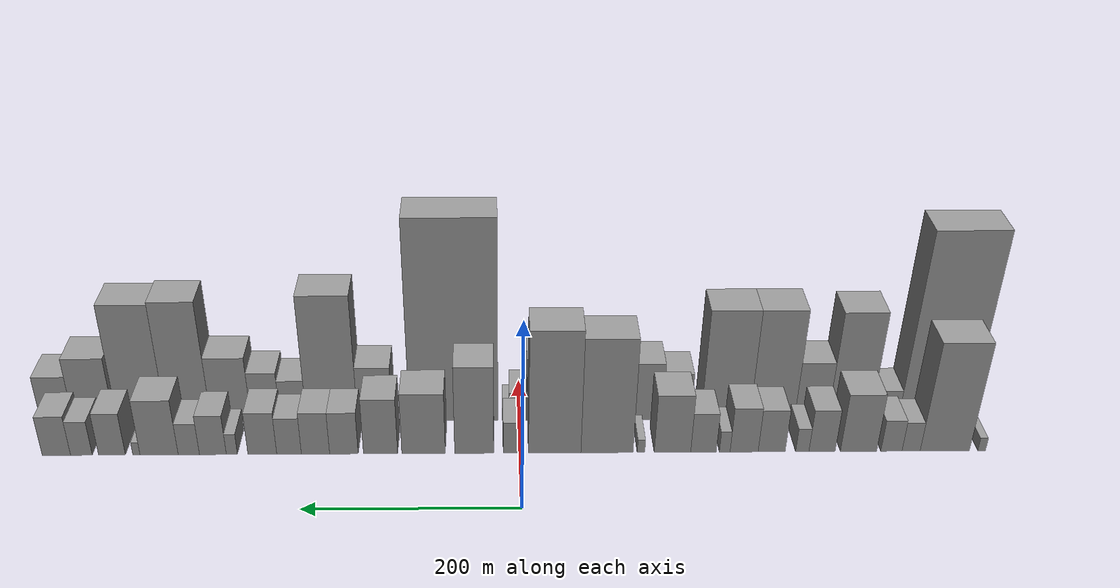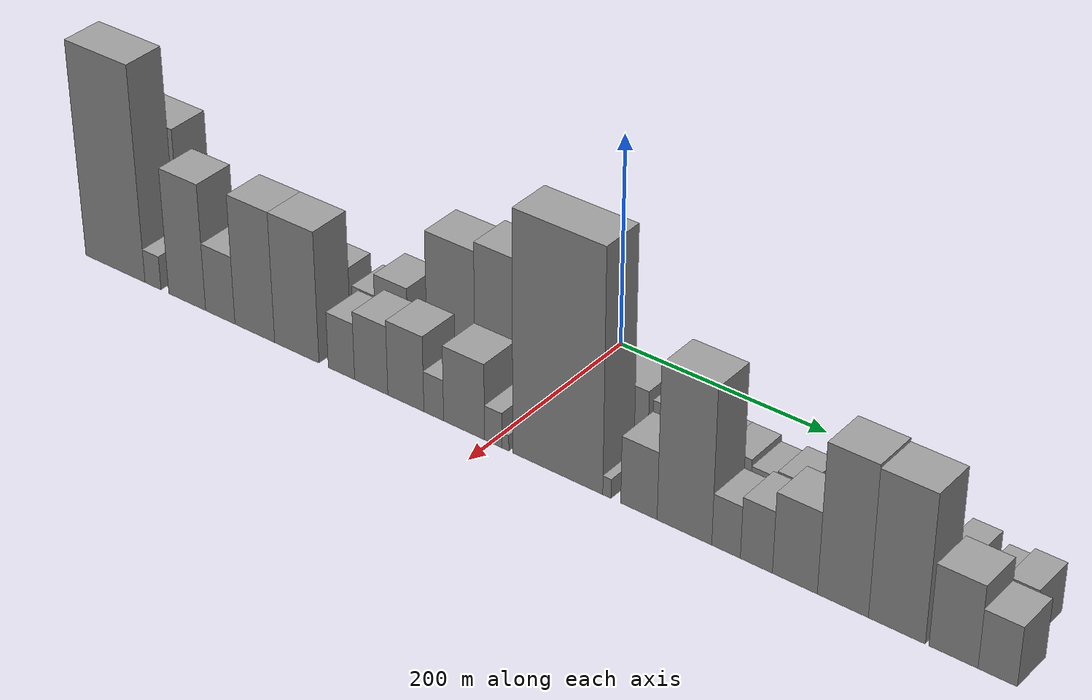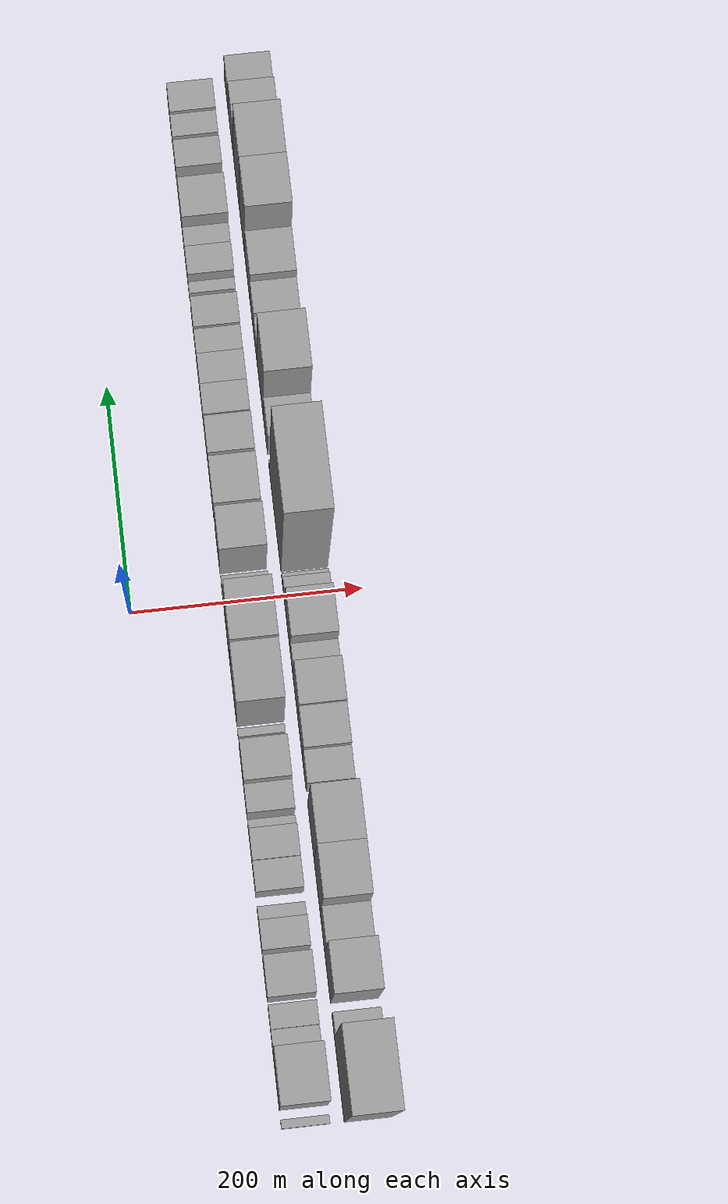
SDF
<sdf version="1.6">
 <world name="default">
  <scene>
   <sky><clouds><speed>12</speed></clouds></sky>
   <ambient>0.4 0.4 0.4 1</ambient>
   <background>0.7 0.7 0.7 1</background>
   <shadows>1</shadows>
  </scene>
  <gravity>0 0 -9.8066</gravity>
  <magnetic_field>6e-06 2.3e-05 -4.2e-05</magnetic_field>
  <physics default="0" name="default_physics" type="ode">
   <ode>
    <solver>
     <type>quick</type>
     <iters>10</iters>
     <sor>1.0</sor>
     <use_dynamic_moi_rescaling>0</use_dynamic_moi_rescaling>
    </solver>
    <constraints>
     <cfm>0</cfm>
     <erp>0.2</erp>
     <contact_max_correcting_vel>100</contact_max_correcting_vel>
     <contact_surface_layer>0.001</contact_surface_layer>
    </constraints>
   </ode>
   <max_step_size>0.004</max_step_size>
   <real_time_factor>1</real_time_factor>
   <real_time_update_rate>250</real_time_update_rate>
  </physics>
  <light name="sun" type="directional">
   <pose>0 0 10 0 0 0</pose>
   <diffuse>0.8 0.8 0.8 1</diffuse>
   <specular>0.2 0.2 0.2 1</specular>
   <attenuation>
    <range>1000</range>
    <constant>0.9</constant>
    <linear>0.01</linear>
    <quadratic>0.001</quadratic>
   </attenuation>
   <direction>-0.5 0.1 -0.9</direction>
  </light>
  <model name="building_1">
   <static>1</static>
   <pose>100.0000 -440.3002 0 0.000000 0.000000 0.000000</pose>
   <link name="link">
    <pose>0 0 7.50 0 0 0</pose>
    <collision name="collision"><geometry><box><size>40.0000 7.3996 15.0000</size></box></geometry></collision>
    <visual name="visual">
     <cast_shadows>0</cast_shadows>
     <geometry><box><size>40.0000 7.3996 15.0000</size></box></geometry>
     <material>
      <script>
       <uri>model://grey_wall/materials/scripts</uri>
       <uri>model://grey_wall/materials/textures</uri>
       <name>vrc/grey_wall</name>
      </script>
     </material>
    </visual>
   </link>
  </model>
  <model name="building_2">
   <static>1</static>
   <pose>100.0000 -404.9858 0 0.000000 0.000000 0.000000</pose>
   <link name="link">
    <pose>0 0 61.50 0 0 0</pose>
    <collision name="collision"><geometry><box><size>40.0000 47.2292 123.0000</size></box></geometry></collision>
    <visual name="visual">
     <cast_shadows>0</cast_shadows>
     <geometry><box><size>40.0000 47.2292 123.0000</size></box></geometry>
     <material>
      <script>
       <uri>model://grey_wall/materials/scripts</uri>
       <uri>model://grey_wall/materials/textures</uri>
       <name>vrc/grey_wall</name>
      </script>
     </material>
    </visual>
   </link>
  </model>
  <model name="building_3">
   <static>1</static>
   <pose>100.0000 -372.7177 0 0.000000 0.000000 0.000000</pose>
   <link name="link">
    <pose>0 0 16.50 0 0 0</pose>
    <collision name="collision"><geometry><box><size>40.0000 17.3070 33.0000</size></box></geometry></collision>
    <visual name="visual">
     <cast_shadows>0</cast_shadows>
     <geometry><box><size>40.0000 17.3070 33.0000</size></box></geometry>
     <material>
      <script>
       <uri>model://grey_wall/materials/scripts</uri>
       <uri>model://grey_wall/materials/textures</uri>
       <name>vrc/grey_wall</name>
      </script>
     </material>
    </visual>
   </link>
  </model>
  <model name="building_4">
   <static>1</static>
   <pose>100.0000 -353.9491 0 0.000000 0.000000 0.000000</pose>
   <link name="link">
    <pose>0 0 18.00 0 0 0</pose>
    <collision name="collision"><geometry><box><size>40.0000 20.2304 36.0000</size></box></geometry></collision>
    <visual name="visual">
     <cast_shadows>0</cast_shadows>
     <geometry><box><size>40.0000 20.2304 36.0000</size></box></geometry>
     <material>
      <script>
       <uri>model://grey_wall/materials/scripts</uri>
       <uri>model://grey_wall/materials/textures</uri>
       <name>vrc/grey_wall</name>
      </script>
     </material>
    </visual>
   </link>
  </model>
  <model name="building_5">
   <static>1</static>
   <pose>100.0000 -322.5061 0 0.000000 0.000000 0.000000</pose>
   <link name="link">
    <pose>0 0 33.00 0 0 0</pose>
    <collision name="collision"><geometry><box><size>40.0000 34.6555 66.0000</size></box></geometry></collision>
    <visual name="visual">
     <cast_shadows>0</cast_shadows>
     <geometry><box><size>40.0000 34.6555 66.0000</size></box></geometry>
     <material>
      <script>
       <uri>model://grey_wall/materials/scripts</uri>
       <uri>model://grey_wall/materials/textures</uri>
       <name>vrc/grey_wall</name>
      </script>
     </material>
    </visual>
   </link>
  </model>
  <model name="building_6">
   <static>1</static>
   <pose>100.0000 -287.6332 0 0.000000 0.000000 0.000000</pose>
   <link name="link">
    <pose>0 0 24.00 0 0 0</pose>
    <collision name="collision"><geometry><box><size>40.0000 25.0902 48.0000</size></box></geometry></collision>
    <visual name="visual">
     <cast_shadows>0</cast_shadows>
     <geometry><box><size>40.0000 25.0902 48.0000</size></box></geometry>
     <material>
      <script>
       <uri>model://grey_wall/materials/scripts</uri>
       <uri>model://grey_wall/materials/textures</uri>
       <name>vrc/grey_wall</name>
      </script>
     </material>
    </visual>
   </link>
  </model>
  <model name="building_7">
   <static>1</static>
   <pose>100.0000 -268.7482 0 0.000000 0.000000 0.000000</pose>
   <link name="link">
    <pose>0 0 13.50 0 0 0</pose>
    <collision name="collision"><geometry><box><size>40.0000 12.6799 27.0000</size></box></geometry></collision>
    <visual name="visual">
     <cast_shadows>0</cast_shadows>
     <geometry><box><size>40.0000 12.6799 27.0000</size></box></geometry>
     <material>
      <script>
       <uri>model://grey_wall/materials/scripts</uri>
       <uri>model://grey_wall/materials/textures</uri>
       <name>vrc/grey_wall</name>
      </script>
     </material>
    </visual>
   </link>
  </model>
  <model name="building_8">
   <static>1</static>
   <pose>100.0000 -239.4727 0 0.000000 0.000000 0.000000</pose>
   <link name="link">
    <pose>0 0 24.00 0 0 0</pose>
    <collision name="collision"><geometry><box><size>40.0000 25.8710 48.0000</size></box></geometry></collision>
    <visual name="visual">
     <cast_shadows>0</cast_shadows>
     <geometry><box><size>40.0000 25.8710 48.0000</size></box></geometry>
     <material>
      <script>
       <uri>model://grey_wall/materials/scripts</uri>
       <uri>model://grey_wall/materials/textures</uri>
       <name>vrc/grey_wall</name>
      </script>
     </material>
    </visual>
   </link>
  </model>
  <model name="building_9">
   <static>1</static>
   <pose>100.0000 -213.1364 0 0.000000 0.000000 0.000000</pose>
   <link name="link">
    <pose>0 0 25.50 0 0 0</pose>
    <collision name="collision"><geometry><box><size>40.0000 26.8017 51.0000</size></box></geometry></collision>
    <visual name="visual">
     <cast_shadows>0</cast_shadows>
     <geometry><box><size>40.0000 26.8017 51.0000</size></box></geometry>
     <material>
      <script>
       <uri>model://grey_wall/materials/scripts</uri>
       <uri>model://grey_wall/materials/textures</uri>
       <name>vrc/grey_wall</name>
      </script>
     </material>
    </visual>
   </link>
  </model>
  <model name="building_10">
   <static>1</static>
   <pose>100.0000 -194.6519 0 0.000000 0.000000 0.000000</pose>
   <link name="link">
    <pose>0 0 12.00 0 0 0</pose>
    <collision name="collision"><geometry><box><size>40.0000 10.1672 24.0000</size></box></geometry></collision>
    <visual name="visual">
     <cast_shadows>0</cast_shadows>
     <geometry><box><size>40.0000 10.1672 24.0000</size></box></geometry>
     <material>
      <script>
       <uri>model://grey_wall/materials/scripts</uri>
       <uri>model://grey_wall/materials/textures</uri>
       <name>vrc/grey_wall</name>
      </script>
     </material>
    </visual>
   </link>
  </model>
  <model name="building_11">
   <static>1</static>
   <pose>100.0000 -174.3743 0 0.000000 0.000000 0.000000</pose>
   <link name="link">
    <pose>0 0 22.50 0 0 0</pose>
    <collision name="collision"><geometry><box><size>40.0000 24.3881 45.0000</size></box></geometry></collision>
    <visual name="visual">
     <cast_shadows>0</cast_shadows>
     <geometry><box><size>40.0000 24.3881 45.0000</size></box></geometry>
     <material>
      <script>
       <uri>model://grey_wall/materials/scripts</uri>
       <uri>model://grey_wall/materials/textures</uri>
       <name>vrc/grey_wall</name>
      </script>
     </material>
    </visual>
   </link>
  </model>
  <model name="building_12">
   <static>1</static>
   <pose>100.0000 -144.7918 0 0.000000 0.000000 0.000000</pose>
   <link name="link">
    <pose>0 0 33.00 0 0 0</pose>
    <collision name="collision"><geometry><box><size>40.0000 34.7770 66.0000</size></box></geometry></collision>
    <visual name="visual">
     <cast_shadows>0</cast_shadows>
     <geometry><box><size>40.0000 34.7770 66.0000</size></box></geometry>
     <material>
      <script>
       <uri>model://grey_wall/materials/scripts</uri>
       <uri>model://grey_wall/materials/textures</uri>
       <name>vrc/grey_wall</name>
      </script>
     </material>
    </visual>
   </link>
  </model>
  <model name="building_13">
   <static>1</static>
   <pose>100.0000 -114.8015 0 0.000000 0.000000 0.000000</pose>
   <link name="link">
    <pose>0 0 7.50 0 0 0</pose>
    <collision name="collision"><geometry><box><size>40.0000 7.2035 15.0000</size></box></geometry></collision>
    <visual name="visual">
     <cast_shadows>0</cast_shadows>
     <geometry><box><size>40.0000 7.2035 15.0000</size></box></geometry>
     <material>
      <script>
       <uri>model://grey_wall/materials/scripts</uri>
       <uri>model://grey_wall/materials/textures</uri>
       <name>vrc/grey_wall</name>
      </script>
     </material>
    </visual>
   </link>
  </model>
  <model name="building_14">
   <static>1</static>
   <pose>100.0000 -82.3362 0 0.000000 0.000000 0.000000</pose>
   <link name="link">
    <pose>0 0 64.50 0 0 0</pose>
    <collision name="collision"><geometry><box><size>40.0000 49.7271 129.0000</size></box></geometry></collision>
    <visual name="visual">
     <cast_shadows>0</cast_shadows>
     <geometry><box><size>40.0000 49.7271 129.0000</size></box></geometry>
     <material>
      <script>
       <uri>model://grey_wall/materials/scripts</uri>
       <uri>model://grey_wall/materials/textures</uri>
       <name>vrc/grey_wall</name>
      </script>
     </material>
    </visual>
   </link>
  </model>
  <model name="building_15">
   <static>1</static>
   <pose>100.0000 -32.4984 0 0.000000 0.000000 0.000000</pose>
   <link name="link">
    <pose>0 0 69.00 0 0 0</pose>
    <collision name="collision"><geometry><box><size>40.0000 49.9486 138.0000</size></box></geometry></collision>
    <visual name="visual">
     <cast_shadows>0</cast_shadows>
     <geometry><box><size>40.0000 49.9486 138.0000</size></box></geometry>
     <material>
      <script>
       <uri>model://grey_wall/materials/scripts</uri>
       <uri>model://grey_wall/materials/textures</uri>
       <name>vrc/grey_wall</name>
      </script>
     </material>
    </visual>
   </link>
  </model>
  <model name="building_16">
   <static>1</static>
   <pose>100.0000 6.5254 0 0.000000 0.000000 0.000000</pose>
   <link name="link">
    <pose>0 0 18.00 0 0 0</pose>
    <collision name="collision"><geometry><box><size>40.0000 20.0990 36.0000</size></box></geometry></collision>
    <visual name="visual">
     <cast_shadows>0</cast_shadows>
     <geometry><box><size>40.0000 20.0990 36.0000</size></box></geometry>
     <material>
      <script>
       <uri>model://grey_wall/materials/scripts</uri>
       <uri>model://grey_wall/materials/textures</uri>
       <name>vrc/grey_wall</name>
      </script>
     </material>
    </visual>
   </link>
  </model>
  <model name="building_17">
   <static>1</static>
   <pose>100.0000 44.1366 0 0.000000 0.000000 0.000000</pose>
   <link name="link">
    <pose>0 0 49.50 0 0 0</pose>
    <collision name="collision"><geometry><box><size>40.0000 37.1235 99.0000</size></box></geometry></collision>
    <visual name="visual">
     <cast_shadows>0</cast_shadows>
     <geometry><box><size>40.0000 37.1235 99.0000</size></box></geometry>
     <material>
      <script>
       <uri>model://grey_wall/materials/scripts</uri>
       <uri>model://grey_wall/materials/textures</uri>
       <name>vrc/grey_wall</name>
      </script>
     </material>
    </visual>
   </link>
  </model>
  <model name="building_18">
   <static>1</static>
   <pose>100.0000 92.3656 0 0.000000 0.000000 0.000000</pose>
   <link name="link">
    <pose>0 0 34.50 0 0 0</pose>
    <collision name="collision"><geometry><box><size>40.0000 41.3346 69.0000</size></box></geometry></collision>
    <visual name="visual">
     <cast_shadows>0</cast_shadows>
     <geometry><box><size>40.0000 41.3346 69.0000</size></box></geometry>
     <material>
      <script>
       <uri>model://grey_wall/materials/scripts</uri>
       <uri>model://grey_wall/materials/textures</uri>
       <name>vrc/grey_wall</name>
      </script>
     </material>
    </visual>
   </link>
  </model>
  <model name="building_19">
   <static>1</static>
   <pose>100.0000 133.2948 0 0.000000 0.000000 0.000000</pose>
   <link name="link">
    <pose>0 0 31.50 0 0 0</pose>
    <collision name="collision"><geometry><box><size>40.0000 32.5238 63.0000</size></box></geometry></collision>
    <visual name="visual">
     <cast_shadows>0</cast_shadows>
     <geometry><box><size>40.0000 32.5238 63.0000</size></box></geometry>
     <material>
      <script>
       <uri>model://grey_wall/materials/scripts</uri>
       <uri>model://grey_wall/materials/textures</uri>
       <name>vrc/grey_wall</name>
      </script>
     </material>
    </visual>
   </link>
  </model>
  <model name="building_20">
   <static>1</static>
   <pose>100.0000 168.1452 0 0.000000 0.000000 0.000000</pose>
   <link name="link">
    <pose>0 0 24.00 0 0 0</pose>
    <collision name="collision"><geometry><box><size>40.0000 27.1771 48.0000</size></box></geometry></collision>
    <visual name="visual">
     <cast_shadows>0</cast_shadows>
     <geometry><box><size>40.0000 27.1771 48.0000</size></box></geometry>
     <material>
      <script>
       <uri>model://grey_wall/materials/scripts</uri>
       <uri>model://grey_wall/materials/textures</uri>
       <name>vrc/grey_wall</name>
      </script>
     </material>
    </visual>
   </link>
  </model>
  <model name="building_21">
   <static>1</static>
   <pose>100.0000 195.1511 0 0.000000 0.000000 0.000000</pose>
   <link name="link">
    <pose>0 0 24.00 0 0 0</pose>
    <collision name="collision"><geometry><box><size>40.0000 26.8346 48.0000</size></box></geometry></collision>
    <visual name="visual">
     <cast_shadows>0</cast_shadows>
     <geometry><box><size>40.0000 26.8346 48.0000</size></box></geometry>
     <material>
      <script>
       <uri>model://grey_wall/materials/scripts</uri>
       <uri>model://grey_wall/materials/textures</uri>
       <name>vrc/grey_wall</name>
      </script>
     </material>
    </visual>
   </link>
  </model>
  <model name="building_22">
   <static>1</static>
   <pose>100.0000 220.2766 0 0.000000 0.000000 0.000000</pose>
   <link name="link">
    <pose>0 0 21.00 0 0 0</pose>
    <collision name="collision"><geometry><box><size>40.0000 23.4163 42.0000</size></box></geometry></collision>
    <visual name="visual">
     <cast_shadows>0</cast_shadows>
     <geometry><box><size>40.0000 23.4163 42.0000</size></box></geometry>
     <material>
      <script>
       <uri>model://grey_wall/materials/scripts</uri>
       <uri>model://grey_wall/materials/textures</uri>
       <name>vrc/grey_wall</name>
      </script>
     </material>
    </visual>
   </link>
  </model>
  <model name="building_23">
   <static>1</static>
   <pose>100.0000 245.6689 0 0.000000 0.000000 0.000000</pose>
   <link name="link">
    <pose>0 0 24.00 0 0 0</pose>
    <collision name="collision"><geometry><box><size>40.0000 27.3684 48.0000</size></box></geometry></collision>
    <visual name="visual">
     <cast_shadows>0</cast_shadows>
     <geometry><box><size>40.0000 27.3684 48.0000</size></box></geometry>
     <material>
      <script>
       <uri>model://grey_wall/materials/scripts</uri>
       <uri>model://grey_wall/materials/textures</uri>
       <name>vrc/grey_wall</name>
      </script>
     </material>
    </visual>
   </link>
  </model>
  <model name="building_24">
   <static>1</static>
   <pose>100.0000 274.6113 0 0.000000 0.000000 0.000000</pose>
   <link name="link">
    <pose>0 0 12.00 0 0 0</pose>
    <collision name="collision"><geometry><box><size>40.0000 10.5164 24.0000</size></box></geometry></collision>
    <visual name="visual">
     <cast_shadows>0</cast_shadows>
     <geometry><box><size>40.0000 10.5164 24.0000</size></box></geometry>
     <material>
      <script>
       <uri>model://grey_wall/materials/scripts</uri>
       <uri>model://grey_wall/materials/textures</uri>
       <name>vrc/grey_wall</name>
      </script>
     </material>
    </visual>
   </link>
  </model>
  <model name="building_25">
   <static>1</static>
   <pose>100.0000 292.6568 0 0.000000 0.000000 0.000000</pose>
   <link name="link">
    <pose>0 0 22.50 0 0 0</pose>
    <collision name="collision"><geometry><box><size>40.0000 25.5744 45.0000</size></box></geometry></collision>
    <visual name="visual">
     <cast_shadows>0</cast_shadows>
     <geometry><box><size>40.0000 25.5744 45.0000</size></box></geometry>
     <material>
      <script>
       <uri>model://grey_wall/materials/scripts</uri>
       <uri>model://grey_wall/materials/textures</uri>
       <name>vrc/grey_wall</name>
      </script>
     </material>
    </visual>
   </link>
  </model>
  <model name="building_26">
   <static>1</static>
   <pose>100.0000 315.5172 0 0.000000 0.000000 0.000000</pose>
   <link name="link">
    <pose>0 0 18.00 0 0 0</pose>
    <collision name="collision"><geometry><box><size>40.0000 20.1464 36.0000</size></box></geometry></collision>
    <visual name="visual">
     <cast_shadows>0</cast_shadows>
     <geometry><box><size>40.0000 20.1464 36.0000</size></box></geometry>
     <material>
      <script>
       <uri>model://grey_wall/materials/scripts</uri>
       <uri>model://grey_wall/materials/textures</uri>
       <name>vrc/grey_wall</name>
      </script>
     </material>
    </visual>
   </link>
  </model>
  <model name="building_27">
   <static>1</static>
   <pose>100.0000 343.7130 0 0.000000 0.000000 0.000000</pose>
   <link name="link">
    <pose>0 0 31.50 0 0 0</pose>
    <collision name="collision"><geometry><box><size>40.0000 36.2452 63.0000</size></box></geometry></collision>
    <visual name="visual">
     <cast_shadows>0</cast_shadows>
     <geometry><box><size>40.0000 36.2452 63.0000</size></box></geometry>
     <material>
      <script>
       <uri>model://grey_wall/materials/scripts</uri>
       <uri>model://grey_wall/materials/textures</uri>
       <name>vrc/grey_wall</name>
      </script>
     </material>
    </visual>
   </link>
  </model>
  <model name="building_28">
   <static>1</static>
   <pose>100.0000 365.2541 0 0.000000 0.000000 0.000000</pose>
   <link name="link">
    <pose>0 0 7.50 0 0 0</pose>
    <collision name="collision"><geometry><box><size>40.0000 6.8370 15.0000</size></box></geometry></collision>
    <visual name="visual">
     <cast_shadows>0</cast_shadows>
     <geometry><box><size>40.0000 6.8370 15.0000</size></box></geometry>
     <material>
      <script>
       <uri>model://grey_wall/materials/scripts</uri>
       <uri>model://grey_wall/materials/textures</uri>
       <name>vrc/grey_wall</name>
      </script>
     </material>
    </visual>
   </link>
  </model>
  <model name="building_29">
   <static>1</static>
   <pose>100.0000 388.3939 0 0.000000 0.000000 0.000000</pose>
   <link name="link">
    <pose>0 0 24.00 0 0 0</pose>
    <collision name="collision"><geometry><box><size>40.0000 25.4425 48.0000</size></box></geometry></collision>
    <visual name="visual">
     <cast_shadows>0</cast_shadows>
     <geometry><box><size>40.0000 25.4425 48.0000</size></box></geometry>
     <material>
      <script>
       <uri>model://grey_wall/materials/scripts</uri>
       <uri>model://grey_wall/materials/textures</uri>
       <name>vrc/grey_wall</name>
      </script>
     </material>
    </visual>
   </link>
  </model>
  <model name="building_30">
   <static>1</static>
   <pose>100.0000 417.4255 0 0.000000 0.000000 0.000000</pose>
   <link name="link">
    <pose>0 0 19.50 0 0 0</pose>
    <collision name="collision"><geometry><box><size>40.0000 20.6208 39.0000</size></box></geometry></collision>
    <visual name="visual">
     <cast_shadows>0</cast_shadows>
     <geometry><box><size>40.0000 20.6208 39.0000</size></box></geometry>
     <material>
      <script>
       <uri>model://grey_wall/materials/scripts</uri>
       <uri>model://grey_wall/materials/textures</uri>
       <name>vrc/grey_wall</name>
      </script>
     </material>
    </visual>
   </link>
  </model>
  <model name="building_31">
   <static>1</static>
   <pose>100.0000 441.1362 0 0.000000 0.000000 0.000000</pose>
   <link name="link">
    <pose>0 0 22.50 0 0 0</pose>
    <collision name="collision"><geometry><box><size>40.0000 26.8006 45.0000</size></box></geometry></collision>
    <visual name="visual">
     <cast_shadows>0</cast_shadows>
     <geometry><box><size>40.0000 26.8006 45.0000</size></box></geometry>
     <material>
      <script>
       <uri>model://grey_wall/materials/scripts</uri>
       <uri>model://grey_wall/materials/textures</uri>
       <name>vrc/grey_wall</name>
      </script>
     </material>
    </visual>
   </link>
  </model>
  <model name="building_32">
   <static>1</static>
   <pose>152.0000 -409.0029 0 0.000000 0.000000 0.000000</pose>
   <link name="link">
    <pose>0 0 105.00 0 0 0</pose>
    <collision name="collision"><geometry><box><size>40.0000 69.9941 210.0000</size></box></geometry></collision>
    <visual name="visual">
     <cast_shadows>0</cast_shadows>
     <geometry><box><size>40.0000 69.9941 210.0000</size></box></geometry>
     <material>
      <script>
       <uri>model://grey_wall/materials/scripts</uri>
       <uri>model://grey_wall/materials/textures</uri>
       <name>vrc/grey_wall</name>
      </script>
     </material>
    </visual>
   </link>
  </model>
  <model name="building_33">
   <static>1</static>
   <pose>152.0000 -364.7103 0 0.000000 0.000000 0.000000</pose>
   <link name="link">
    <pose>0 0 16.50 0 0 0</pose>
    <collision name="collision"><geometry><box><size>40.0000 18.5913 33.0000</size></box></geometry></collision>
    <visual name="visual">
     <cast_shadows>0</cast_shadows>
     <geometry><box><size>40.0000 18.5913 33.0000</size></box></geometry>
     <material>
      <script>
       <uri>model://grey_wall/materials/scripts</uri>
       <uri>model://grey_wall/materials/textures</uri>
       <name>vrc/grey_wall</name>
      </script>
     </material>
    </visual>
   </link>
  </model>
  <model name="building_34">
   <static>1</static>
   <pose>152.0000 -325.2892 0 0.000000 0.000000 0.000000</pose>
   <link name="link">
    <pose>0 0 61.50 0 0 0</pose>
    <collision name="collision"><geometry><box><size>40.0000 42.2508 123.0000</size></box></geometry></collision>
    <visual name="visual">
     <cast_shadows>0</cast_shadows>
     <geometry><box><size>40.0000 42.2508 123.0000</size></box></geometry>
     <material>
      <script>
       <uri>model://grey_wall/materials/scripts</uri>
       <uri>model://grey_wall/materials/textures</uri>
       <name>vrc/grey_wall</name>
      </script>
     </material>
    </visual>
   </link>
  </model>
  <model name="building_35">
   <static>1</static>
   <pose>152.0000 -287.6180 0 0.000000 0.000000 0.000000</pose>
   <link name="link">
    <pose>0 0 33.00 0 0 0</pose>
    <collision name="collision"><geometry><box><size>40.0000 33.0916 66.0000</size></box></geometry></collision>
    <visual name="visual">
     <cast_shadows>0</cast_shadows>
     <geometry><box><size>40.0000 33.0916 66.0000</size></box></geometry>
     <material>
      <script>
       <uri>model://grey_wall/materials/scripts</uri>
       <uri>model://grey_wall/materials/textures</uri>
       <name>vrc/grey_wall</name>
      </script>
     </material>
    </visual>
   </link>
  </model>
  <model name="building_36">
   <static>1</static>
   <pose>152.0000 -248.9845 0 0.000000 0.000000 0.000000</pose>
   <link name="link">
    <pose>0 0 63.00 0 0 0</pose>
    <collision name="collision"><geometry><box><size>40.0000 44.1754 126.0000</size></box></geometry></collision>
    <visual name="visual">
     <cast_shadows>0</cast_shadows>
     <geometry><box><size>40.0000 44.1754 126.0000</size></box></geometry>
     <material>
      <script>
       <uri>model://grey_wall/materials/scripts</uri>
       <uri>model://grey_wall/materials/textures</uri>
       <name>vrc/grey_wall</name>
      </script>
     </material>
    </visual>
   </link>
  </model>
  <model name="building_37">
   <static>1</static>
   <pose>152.0000 -202.7989 0 0.000000 0.000000 0.000000</pose>
   <link name="link">
    <pose>0 0 63.00 0 0 0</pose>
    <collision name="collision"><geometry><box><size>40.0000 48.1958 126.0000</size></box></geometry></collision>
    <visual name="visual">
     <cast_shadows>0</cast_shadows>
     <geometry><box><size>40.0000 48.1958 126.0000</size></box></geometry>
     <material>
      <script>
       <uri>model://grey_wall/materials/scripts</uri>
       <uri>model://grey_wall/materials/textures</uri>
       <name>vrc/grey_wall</name>
      </script>
     </material>
    </visual>
   </link>
  </model>
  <model name="building_38">
   <static>1</static>
   <pose>152.0000 -154.6330 0 0.000000 0.000000 0.000000</pose>
   <link name="link">
    <pose>0 0 27.00 0 0 0</pose>
    <collision name="collision"><geometry><box><size>40.0000 28.1359 54.0000</size></box></geometry></collision>
    <visual name="visual">
     <cast_shadows>0</cast_shadows>
     <geometry><box><size>40.0000 28.1359 54.0000</size></box></geometry>
     <material>
      <script>
       <uri>model://grey_wall/materials/scripts</uri>
       <uri>model://grey_wall/materials/textures</uri>
       <name>vrc/grey_wall</name>
      </script>
     </material>
    </visual>
   </link>
  </model>
  <model name="building_39">
   <static>1</static>
   <pose>152.0000 -123.0838 0 0.000000 0.000000 0.000000</pose>
   <link name="link">
    <pose>0 0 33.00 0 0 0</pose>
    <collision name="collision"><geometry><box><size>40.0000 34.9626 66.0000</size></box></geometry></collision>
    <visual name="visual">
     <cast_shadows>0</cast_shadows>
     <geometry><box><size>40.0000 34.9626 66.0000</size></box></geometry>
     <material>
      <script>
       <uri>model://grey_wall/materials/scripts</uri>
       <uri>model://grey_wall/materials/textures</uri>
       <name>vrc/grey_wall</name>
      </script>
     </material>
    </visual>
   </link>
  </model>
  <model name="building_40">
   <static>1</static>
   <pose>152.0000 -86.9185 0 0.000000 0.000000 0.000000</pose>
   <link name="link">
    <pose>0 0 36.00 0 0 0</pose>
    <collision name="collision"><geometry><box><size>40.0000 37.3680 72.0000</size></box></geometry></collision>
    <visual name="visual">
     <cast_shadows>0</cast_shadows>
     <geometry><box><size>40.0000 37.3680 72.0000</size></box></geometry>
     <material>
      <script>
       <uri>model://grey_wall/materials/scripts</uri>
       <uri>model://grey_wall/materials/textures</uri>
       <name>vrc/grey_wall</name>
      </script>
     </material>
    </visual>
   </link>
  </model>
  <model name="building_41">
   <static>1</static>
   <pose>152.0000 -58.1533 0 0.000000 0.000000 0.000000</pose>
   <link name="link">
    <pose>0 0 19.50 0 0 0</pose>
    <collision name="collision"><geometry><box><size>40.0000 20.1622 39.0000</size></box></geometry></collision>
    <visual name="visual">
     <cast_shadows>0</cast_shadows>
     <geometry><box><size>40.0000 20.1622 39.0000</size></box></geometry>
     <material>
      <script>
       <uri>model://grey_wall/materials/scripts</uri>
       <uri>model://grey_wall/materials/textures</uri>
       <name>vrc/grey_wall</name>
      </script>
     </material>
    </visual>
   </link>
  </model>
  <model name="building_42">
   <static>1</static>
   <pose>152.0000 -27.3960 0 0.000000 0.000000 0.000000</pose>
   <link name="link">
    <pose>0 0 36.00 0 0 0</pose>
    <collision name="collision"><geometry><box><size>40.0000 41.3525 72.0000</size></box></geometry></collision>
    <visual name="visual">
     <cast_shadows>0</cast_shadows>
     <geometry><box><size>40.0000 41.3525 72.0000</size></box></geometry>
     <material>
      <script>
       <uri>model://grey_wall/materials/scripts</uri>
       <uri>model://grey_wall/materials/textures</uri>
       <name>vrc/grey_wall</name>
      </script>
     </material>
    </visual>
   </link>
  </model>
  <model name="building_43">
   <static>1</static>
   <pose>152.0000 1.9424 0 0.000000 0.000000 0.000000</pose>
   <link name="link">
    <pose>0 0 16.50 0 0 0</pose>
    <collision name="collision"><geometry><box><size>40.0000 17.3242 33.0000</size></box></geometry></collision>
    <visual name="visual">
     <cast_shadows>0</cast_shadows>
     <geometry><box><size>40.0000 17.3242 33.0000</size></box></geometry>
     <material>
      <script>
       <uri>model://grey_wall/materials/scripts</uri>
       <uri>model://grey_wall/materials/textures</uri>
       <name>vrc/grey_wall</name>
      </script>
     </material>
    </visual>
   </link>
  </model>
  <model name="building_44">
   <static>1</static>
   <pose>152.0000 14.0007 0 0.000000 0.000000 0.000000</pose>
   <link name="link">
    <pose>0 0 7.50 0 0 0</pose>
    <collision name="collision"><geometry><box><size>40.0000 6.7923 15.0000</size></box></geometry></collision>
    <visual name="visual">
     <cast_shadows>0</cast_shadows>
     <geometry><box><size>40.0000 6.7923 15.0000</size></box></geometry>
     <material>
      <script>
       <uri>model://grey_wall/materials/scripts</uri>
       <uri>model://grey_wall/materials/textures</uri>
       <name>vrc/grey_wall</name>
      </script>
     </material>
    </visual>
   </link>
  </model>
  <model name="building_45">
   <static>1</static>
   <pose>152.0000 64.9566 0 0.000000 0.000000 0.000000</pose>
   <link name="link">
    <pose>0 0 112.50 0 0 0</pose>
    <collision name="collision"><geometry><box><size>40.0000 87.1195 225.0000</size></box></geometry></collision>
    <visual name="visual">
     <cast_shadows>0</cast_shadows>
     <geometry><box><size>40.0000 87.1195 225.0000</size></box></geometry>
     <material>
      <script>
       <uri>model://grey_wall/materials/scripts</uri>
       <uri>model://grey_wall/materials/textures</uri>
       <name>vrc/grey_wall</name>
      </script>
     </material>
    </visual>
   </link>
  </model>
  <model name="building_46">
   <static>1</static>
   <pose>152.0000 112.5304 0 0.000000 0.000000 0.000000</pose>
   <link name="link">
    <pose>0 0 9.00 0 0 0</pose>
    <collision name="collision"><geometry><box><size>40.0000 8.0281 18.0000</size></box></geometry></collision>
    <visual name="visual">
     <cast_shadows>0</cast_shadows>
     <geometry><box><size>40.0000 8.0281 18.0000</size></box></geometry>
     <material>
      <script>
       <uri>model://grey_wall/materials/scripts</uri>
       <uri>model://grey_wall/materials/textures</uri>
       <name>vrc/grey_wall</name>
      </script>
     </material>
    </visual>
   </link>
  </model>
  <model name="building_47">
   <static>1</static>
   <pose>152.0000 142.5628 0 0.000000 0.000000 0.000000</pose>
   <link name="link">
    <pose>0 0 31.50 0 0 0</pose>
    <collision name="collision"><geometry><box><size>40.0000 34.0367 63.0000</size></box></geometry></collision>
    <visual name="visual">
     <cast_shadows>0</cast_shadows>
     <geometry><box><size>40.0000 34.0367 63.0000</size></box></geometry>
     <material>
      <script>
       <uri>model://grey_wall/materials/scripts</uri>
       <uri>model://grey_wall/materials/textures</uri>
       <name>vrc/grey_wall</name>
      </script>
     </material>
    </visual>
   </link>
  </model>
  <model name="building_48">
   <static>1</static>
   <pose>152.0000 184.6784 0 0.000000 0.000000 0.000000</pose>
   <link name="link">
    <pose>0 0 72.00 0 0 0</pose>
    <collision name="collision"><geometry><box><size>40.0000 50.1945 144.0000</size></box></geometry></collision>
    <visual name="visual">
     <cast_shadows>0</cast_shadows>
     <geometry><box><size>40.0000 50.1945 144.0000</size></box></geometry>
     <material>
      <script>
       <uri>model://grey_wall/materials/scripts</uri>
       <uri>model://grey_wall/materials/textures</uri>
       <name>vrc/grey_wall</name>
      </script>
     </material>
    </visual>
   </link>
  </model>
  <model name="building_49">
   <static>1</static>
   <pose>152.0000 222.6661 0 0.000000 0.000000 0.000000</pose>
   <link name="link">
    <pose>0 0 24.00 0 0 0</pose>
    <collision name="collision"><geometry><box><size>40.0000 25.7808 48.0000</size></box></geometry></collision>
    <visual name="visual">
     <cast_shadows>0</cast_shadows>
     <geometry><box><size>40.0000 25.7808 48.0000</size></box></geometry>
     <material>
      <script>
       <uri>model://grey_wall/materials/scripts</uri>
       <uri>model://grey_wall/materials/textures</uri>
       <name>vrc/grey_wall</name>
      </script>
     </material>
    </visual>
   </link>
  </model>
  <model name="building_50">
   <static>1</static>
   <pose>152.0000 249.8329 0 0.000000 0.000000 0.000000</pose>
   <link name="link">
    <pose>0 0 28.50 0 0 0</pose>
    <collision name="collision"><geometry><box><size>40.0000 28.5529 57.0000</size></box></geometry></collision>
    <visual name="visual">
     <cast_shadows>0</cast_shadows>
     <geometry><box><size>40.0000 28.5529 57.0000</size></box></geometry>
     <material>
      <script>
       <uri>model://grey_wall/materials/scripts</uri>
       <uri>model://grey_wall/materials/textures</uri>
       <name>vrc/grey_wall</name>
      </script>
     </material>
    </visual>
   </link>
  </model>
  <model name="building_51">
   <static>1</static>
   <pose>152.0000 283.8152 0 0.000000 0.000000 0.000000</pose>
   <link name="link">
    <pose>0 0 37.50 0 0 0</pose>
    <collision name="collision"><geometry><box><size>40.0000 39.4115 75.0000</size></box></geometry></collision>
    <visual name="visual">
     <cast_shadows>0</cast_shadows>
     <geometry><box><size>40.0000 39.4115 75.0000</size></box></geometry>
     <material>
      <script>
       <uri>model://grey_wall/materials/scripts</uri>
       <uri>model://grey_wall/materials/textures</uri>
       <name>vrc/grey_wall</name>
      </script>
     </material>
    </visual>
   </link>
  </model>
  <model name="building_52">
   <static>1</static>
   <pose>152.0000 325.4858 0 0.000000 0.000000 0.000000</pose>
   <link name="link">
    <pose>0 0 69.00 0 0 0</pose>
    <collision name="collision"><geometry><box><size>40.0000 43.9298 138.0000</size></box></geometry></collision>
    <visual name="visual">
     <cast_shadows>0</cast_shadows>
     <geometry><box><size>40.0000 43.9298 138.0000</size></box></geometry>
     <material>
      <script>
       <uri>model://grey_wall/materials/scripts</uri>
       <uri>model://grey_wall/materials/textures</uri>
       <name>vrc/grey_wall</name>
      </script>
     </material>
    </visual>
   </link>
  </model>
  <model name="building_53">
   <static>1</static>
   <pose>152.0000 371.4032 0 0.000000 0.000000 0.000000</pose>
   <link name="link">
    <pose>0 0 67.50 0 0 0</pose>
    <collision name="collision"><geometry><box><size>40.0000 47.9051 135.0000</size></box></geometry></collision>
    <visual name="visual">
     <cast_shadows>0</cast_shadows>
     <geometry><box><size>40.0000 47.9051 135.0000</size></box></geometry>
     <material>
      <script>
       <uri>model://grey_wall/materials/scripts</uri>
       <uri>model://grey_wall/materials/textures</uri>
       <name>vrc/grey_wall</name>
      </script>
     </material>
    </visual>
   </link>
  </model>
  <model name="building_54">
   <static>1</static>
   <pose>152.0000 418.5327 0 0.000000 0.000000 0.000000</pose>
   <link name="link">
    <pose>0 0 37.50 0 0 0</pose>
    <collision name="collision"><geometry><box><size>40.0000 40.3539 75.0000</size></box></geometry></collision>
    <visual name="visual">
     <cast_shadows>0</cast_shadows>
     <geometry><box><size>40.0000 40.3539 75.0000</size></box></geometry>
     <material>
      <script>
       <uri>model://grey_wall/materials/scripts</uri>
       <uri>model://grey_wall/materials/textures</uri>
       <name>vrc/grey_wall</name>
      </script>
     </material>
    </visual>
   </link>
  </model>
  <model name="building_55">
   <static>1</static>
   <pose>152.0000 454.6258 0 0.000000 0.000000 0.000000</pose>
   <link name="link">
    <pose>0 0 27.00 0 0 0</pose>
    <collision name="collision"><geometry><box><size>40.0000 31.8323 54.0000</size></box></geometry></collision>
    <visual name="visual">
     <cast_shadows>0</cast_shadows>
     <geometry><box><size>40.0000 31.8323 54.0000</size></box></geometry>
     <material>
      <script>
       <uri>model://grey_wall/materials/scripts</uri>
       <uri>model://grey_wall/materials/textures</uri>
       <name>vrc/grey_wall</name>
      </script>
     </material>
    </visual>
   </link>
  </model>
 </world>
</sdf>
